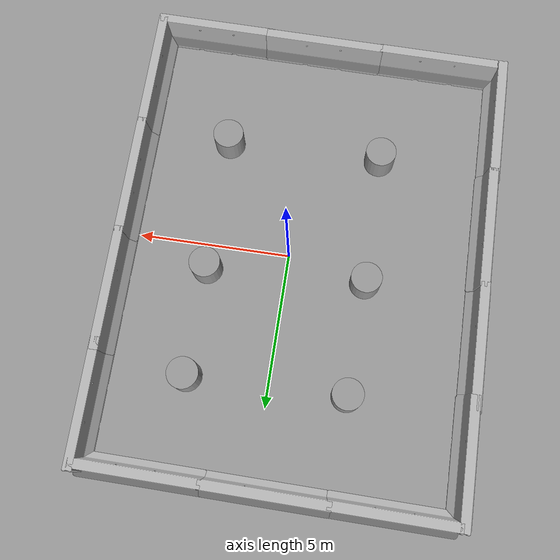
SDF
<sdf version="1.6">
 <world name="default">
  <light name="sun" type="directional">
   <cast_shadows>0</cast_shadows>
   <pose>0 0 10 0 -0 0</pose>
   <diffuse>0.8 0.8 0.8 1</diffuse>
   <specular>0.2 0.2 0.2 1</specular>
   <attenuation>
    <range>1000</range>
    <constant>0.9</constant>
    <linear>0.01</linear>
    <quadratic>0.001</quadratic>
   </attenuation>
   <direction>0.5 0.1 -0.9</direction>
  </light>
  <scene><ambient>0.4 0.4 0.4 1</ambient><background>0.7 0.7 0.7 1</background><shadows>0</shadows></scene>
  <physics name="default_physics" default="0" type="ode">
   <max_step_size>0.01</max_step_size>
   <real_time_factor>1</real_time_factor>
   <real_time_update_rate>100</real_time_update_rate>
  </physics>
  <model name="jersey_barrier">
   <static>1</static>
   <link name="link">
    <visual name="visual">
     <geometry><mesh><uri>model://jersey_barrier/meshes/jersey_barrier.dae</uri></mesh></geometry>
    </visual>
    <collision name="upright">
     <pose>0 0 0.5715 0 -0 0</pose>
     <geometry><box><size>4.06542 0.3063 1.143</size></box></geometry>
    </collision>
    <collision name="base">
     <pose>0 0 0.032258 0 -0 0</pose>
     <geometry><box><size>4.06542 0.8107 0.064516</size></box></geometry>
    </collision>
    <collision name="base2">
     <pose>0 0 0.1 0 -0 0</pose>
     <geometry><box><size>4.06542 0.65 0.1</size></box></geometry>
    </collision>
    <collision name="base3">
     <pose>0 0 0.2 0 -0 0</pose>
     <geometry><box><size>4.06542 0.5 0.1</size></box></geometry>
    </collision>
    <collision name="left-angle">
     <pose>0 -0.224 0.2401 0.9 -0 0</pose>
     <geometry><box><size>4.06542 0.5 0.064516</size></box></geometry>
    </collision>
    <collision name="right-angle">
     <pose>0 0.224 0.2401 -0.9 0 0</pose>
     <geometry><box><size>4.06542 0.5 0.064516</size></box></geometry>
    </collision>
    <velocity_decay><linear>0</linear><angular>0</angular></velocity_decay>
   </link>
   <pose>-4.06312 -7.45729 0 0 0 -0.009774</pose>
  </model>
  <model name="ground_plane_0">
   <static>1</static>
   <link name="link">
    <collision name="collision">
     <geometry><plane><normal>0 0 1</normal><size>100 100</size></plane></geometry>
     <surface><friction><ode><mu>100</mu><mu2>50</mu2></ode></friction></surface>
    </collision>
    <visual name="visual">
     <cast_shadows>0</cast_shadows>
     <geometry><plane><normal>0 0 1</normal><size>100 100</size></plane></geometry>
     <material>
      <script><uri>file://media/materials/scripts/gazebo.material</uri><name>Gazebo/Grey</name></script>
     </material>
    </visual>
    <velocity_decay><linear>0</linear><angular>0</angular></velocity_decay>
   </link>
   <pose>0.497681 0 0 0 -0 0</pose>
  </model>
  <gravity>0 0 -9.8</gravity>
  <magnetic_field>6e-06 2.3e-05 -4.2e-05</magnetic_field>
  <atmosphere type="adiabatic"/>
  <audio><device>default</device></audio>
  <spherical_coordinates>
   <surface_model>EARTH_WGS84</surface_model>
   <latitude_deg>0</latitude_deg>
   <longitude_deg>0</longitude_deg>
   <elevation>0</elevation>
   <heading_deg>0</heading_deg>
  </spherical_coordinates>
  <model name="jersey_barrier_clone">
   <static>1</static>
   <link name="link">
    <visual name="visual">
     <geometry><mesh><uri>model://jersey_barrier/meshes/jersey_barrier.dae</uri></mesh></geometry>
    </visual>
    <collision name="upright">
     <pose>0 0 0.5715 0 -0 0</pose>
     <geometry><box><size>4.06542 0.3063 1.143</size></box></geometry>
    </collision>
    <collision name="base">
     <pose>0 0 0.032258 0 -0 0</pose>
     <geometry><box><size>4.06542 0.8107 0.064516</size></box></geometry>
    </collision>
    <collision name="base2">
     <pose>0 0 0.1 0 -0 0</pose>
     <geometry><box><size>4.06542 0.65 0.1</size></box></geometry>
    </collision>
    <collision name="base3">
     <pose>0 0 0.2 0 -0 0</pose>
     <geometry><box><size>4.06542 0.5 0.1</size></box></geometry>
    </collision>
    <collision name="left-angle">
     <pose>0 -0.224 0.2401 0.9 -0 0</pose>
     <geometry><box><size>4.06542 0.5 0.064516</size></box></geometry>
    </collision>
    <collision name="right-angle">
     <pose>0 0.224 0.2401 -0.9 0 0</pose>
     <geometry><box><size>4.06542 0.5 0.064516</size></box></geometry>
    </collision>
    <velocity_decay><linear>0</linear><angular>0</angular></velocity_decay>
   </link>
   <pose>-0.119952 -7.47951 0 0 0 -0.009774</pose>
  </model>
  <model name="jersey_barrier_clone_clone">
   <static>1</static>
   <link name="link">
    <visual name="visual">
     <geometry><mesh><uri>model://jersey_barrier/meshes/jersey_barrier.dae</uri></mesh></geometry>
    </visual>
    <collision name="upright">
     <pose>0 0 0.5715 0 -0 0</pose>
     <geometry><box><size>4.06542 0.3063 1.143</size></box></geometry>
    </collision>
    <collision name="base">
     <pose>0 0 0.032258 0 -0 0</pose>
     <geometry><box><size>4.06542 0.8107 0.064516</size></box></geometry>
    </collision>
    <collision name="base2">
     <pose>0 0 0.1 0 -0 0</pose>
     <geometry><box><size>4.06542 0.65 0.1</size></box></geometry>
    </collision>
    <collision name="base3">
     <pose>0 0 0.2 0 -0 0</pose>
     <geometry><box><size>4.06542 0.5 0.1</size></box></geometry>
    </collision>
    <collision name="left-angle">
     <pose>0 -0.224 0.2401 0.9 -0 0</pose>
     <geometry><box><size>4.06542 0.5 0.064516</size></box></geometry>
    </collision>
    <collision name="right-angle">
     <pose>0 0.224 0.2401 -0.9 0 0</pose>
     <geometry><box><size>4.06542 0.5 0.064516</size></box></geometry>
    </collision>
    <velocity_decay><linear>0</linear><angular>0</angular></velocity_decay>
   </link>
   <pose>3.63853 -7.52755 0 0 0 -0.009774</pose>
  </model>
  <model name="jersey_barrier_clone_clone_clone">
   <static>1</static>
   <link name="link">
    <visual name="visual">
     <geometry><mesh><uri>model://jersey_barrier/meshes/jersey_barrier.dae</uri></mesh></geometry>
    </visual>
    <collision name="upright">
     <pose>0 0 0.5715 0 -0 0</pose>
     <geometry><box><size>4.06542 0.3063 1.143</size></box></geometry>
    </collision>
    <collision name="base">
     <pose>0 0 0.032258 0 -0 0</pose>
     <geometry><box><size>4.06542 0.8107 0.064516</size></box></geometry>
    </collision>
    <collision name="base2">
     <pose>0 0 0.1 0 -0 0</pose>
     <geometry><box><size>4.06542 0.65 0.1</size></box></geometry>
    </collision>
    <collision name="base3">
     <pose>0 0 0.2 0 -0 0</pose>
     <geometry><box><size>4.06542 0.5 0.1</size></box></geometry>
    </collision>
    <collision name="left-angle">
     <pose>0 -0.224 0.2401 0.9 -0 0</pose>
     <geometry><box><size>4.06542 0.5 0.064516</size></box></geometry>
    </collision>
    <collision name="right-angle">
     <pose>0 0.224 0.2401 -0.9 0 0</pose>
     <geometry><box><size>4.06542 0.5 0.064516</size></box></geometry>
    </collision>
    <velocity_decay><linear>0</linear><angular>0</angular></velocity_decay>
   </link>
   <pose>3.46357 7.48747 0 0 0 -0.009774</pose>
  </model>
  <model name="jersey_barrier_clone_clone_clone_clone">
   <static>1</static>
   <link name="link">
    <visual name="visual">
     <geometry><mesh><uri>model://jersey_barrier/meshes/jersey_barrier.dae</uri></mesh></geometry>
    </visual>
    <collision name="upright">
     <pose>0 0 0.5715 0 -0 0</pose>
     <geometry><box><size>4.06542 0.3063 1.143</size></box></geometry>
    </collision>
    <collision name="base">
     <pose>0 0 0.032258 0 -0 0</pose>
     <geometry><box><size>4.06542 0.8107 0.064516</size></box></geometry>
    </collision>
    <collision name="base2">
     <pose>0 0 0.1 0 -0 0</pose>
     <geometry><box><size>4.06542 0.65 0.1</size></box></geometry>
    </collision>
    <collision name="base3">
     <pose>0 0 0.2 0 -0 0</pose>
     <geometry><box><size>4.06542 0.5 0.1</size></box></geometry>
    </collision>
    <collision name="left-angle">
     <pose>0 -0.224 0.2401 0.9 -0 0</pose>
     <geometry><box><size>4.06542 0.5 0.064516</size></box></geometry>
    </collision>
    <collision name="right-angle">
     <pose>0 0.224 0.2401 -0.9 0 0</pose>
     <geometry><box><size>4.06542 0.5 0.064516</size></box></geometry>
    </collision>
    <velocity_decay><linear>0</linear><angular>0</angular></velocity_decay>
   </link>
   <pose>-0.431388 7.52892 0 0 0 -0.009774</pose>
  </model>
  <model name="jersey_barrier_clone_clone_clone_clone_clone">
   <static>1</static>
   <link name="link">
    <visual name="visual">
     <geometry><mesh><uri>model://jersey_barrier/meshes/jersey_barrier.dae</uri></mesh></geometry>
    </visual>
    <collision name="upright">
     <pose>0 0 0.5715 0 -0 0</pose>
     <geometry><box><size>4.06542 0.3063 1.143</size></box></geometry>
    </collision>
    <collision name="base">
     <pose>0 0 0.032258 0 -0 0</pose>
     <geometry><box><size>4.06542 0.8107 0.064516</size></box></geometry>
    </collision>
    <collision name="base2">
     <pose>0 0 0.1 0 -0 0</pose>
     <geometry><box><size>4.06542 0.65 0.1</size></box></geometry>
    </collision>
    <collision name="base3">
     <pose>0 0 0.2 0 -0 0</pose>
     <geometry><box><size>4.06542 0.5 0.1</size></box></geometry>
    </collision>
    <collision name="left-angle">
     <pose>0 -0.224 0.2401 0.9 -0 0</pose>
     <geometry><box><size>4.06542 0.5 0.064516</size></box></geometry>
    </collision>
    <collision name="right-angle">
     <pose>0 0.224 0.2401 -0.9 0 0</pose>
     <geometry><box><size>4.06542 0.5 0.064516</size></box></geometry>
    </collision>
    <velocity_decay><linear>0</linear><angular>0</angular></velocity_decay>
   </link>
   <pose>-4.29011 7.55811 0 0 0 -0.009774</pose>
  </model>
  <model name="jersey_barrier_clone_0">
   <static>1</static>
   <link name="link">
    <visual name="visual">
     <geometry><mesh><uri>model://jersey_barrier/meshes/jersey_barrier.dae</uri></mesh></geometry>
    </visual>
    <collision name="upright">
     <pose>0 0 0.5715 0 -0 0</pose>
     <geometry><box><size>4.06542 0.3063 1.143</size></box></geometry>
    </collision>
    <collision name="base">
     <pose>0 0 0.032258 0 -0 0</pose>
     <geometry><box><size>4.06542 0.8107 0.064516</size></box></geometry>
    </collision>
    <collision name="base2">
     <pose>0 0 0.1 0 -0 0</pose>
     <geometry><box><size>4.06542 0.65 0.1</size></box></geometry>
    </collision>
    <collision name="base3">
     <pose>0 0 0.2 0 -0 0</pose>
     <geometry><box><size>4.06542 0.5 0.1</size></box></geometry>
    </collision>
    <collision name="left-angle">
     <pose>0 -0.224 0.2401 0.9 -0 0</pose>
     <geometry><box><size>4.06542 0.5 0.064516</size></box></geometry>
    </collision>
    <collision name="right-angle">
     <pose>0 0.224 0.2401 -0.9 0 0</pose>
     <geometry><box><size>4.06542 0.5 0.064516</size></box></geometry>
    </collision>
    <velocity_decay><linear>0</linear><angular>0</angular></velocity_decay>
   </link>
   <pose>-6.27583 -5.5751 0 0 -0 1.57819</pose>
  </model>
  <model name="jersey_barrier_clone_0_clone">
   <static>1</static>
   <link name="link">
    <visual name="visual">
     <geometry><mesh><uri>model://jersey_barrier/meshes/jersey_barrier.dae</uri></mesh></geometry>
    </visual>
    <collision name="upright">
     <pose>0 0 0.5715 0 -0 0</pose>
     <geometry><box><size>4.06542 0.3063 1.143</size></box></geometry>
    </collision>
    <collision name="base">
     <pose>0 0 0.032258 0 -0 0</pose>
     <geometry><box><size>4.06542 0.8107 0.064516</size></box></geometry>
    </collision>
    <collision name="base2">
     <pose>0 0 0.1 0 -0 0</pose>
     <geometry><box><size>4.06542 0.65 0.1</size></box></geometry>
    </collision>
    <collision name="base3">
     <pose>0 0 0.2 0 -0 0</pose>
     <geometry><box><size>4.06542 0.5 0.1</size></box></geometry>
    </collision>
    <collision name="left-angle">
     <pose>0 -0.224 0.2401 0.9 -0 0</pose>
     <geometry><box><size>4.06542 0.5 0.064516</size></box></geometry>
    </collision>
    <collision name="right-angle">
     <pose>0 0.224 0.2401 -0.9 0 0</pose>
     <geometry><box><size>4.06542 0.5 0.064516</size></box></geometry>
    </collision>
    <velocity_decay><linear>0</linear><angular>0</angular></velocity_decay>
   </link>
   <pose>-6.27939 -1.65531 0 0 -0 1.57819</pose>
  </model>
  <model name="jersey_barrier_clone_0_clone_clone">
   <static>1</static>
   <link name="link">
    <visual name="visual">
     <geometry><mesh><uri>model://jersey_barrier/meshes/jersey_barrier.dae</uri></mesh></geometry>
    </visual>
    <collision name="upright">
     <pose>0 0 0.5715 0 -0 0</pose>
     <geometry><box><size>4.06542 0.3063 1.143</size></box></geometry>
    </collision>
    <collision name="base">
     <pose>0 0 0.032258 0 -0 0</pose>
     <geometry><box><size>4.06542 0.8107 0.064516</size></box></geometry>
    </collision>
    <collision name="base2">
     <pose>0 0 0.1 0 -0 0</pose>
     <geometry><box><size>4.06542 0.65 0.1</size></box></geometry>
    </collision>
    <collision name="base3">
     <pose>0 0 0.2 0 -0 0</pose>
     <geometry><box><size>4.06542 0.5 0.1</size></box></geometry>
    </collision>
    <collision name="left-angle">
     <pose>0 -0.224 0.2401 0.9 -0 0</pose>
     <geometry><box><size>4.06542 0.5 0.064516</size></box></geometry>
    </collision>
    <collision name="right-angle">
     <pose>0 0.224 0.2401 -0.9 0 0</pose>
     <geometry><box><size>4.06542 0.5 0.064516</size></box></geometry>
    </collision>
    <velocity_decay><linear>0</linear><angular>0</angular></velocity_decay>
   </link>
   <pose>-6.32341 2.19754 0 0 -0 1.57819</pose>
  </model>
  <model name="jersey_barrier_clone_0_clone_clone_0">
   <static>1</static>
   <link name="link">
    <visual name="visual">
     <geometry><mesh><uri>model://jersey_barrier/meshes/jersey_barrier.dae</uri></mesh></geometry>
    </visual>
    <collision name="upright">
     <pose>0 0 0.5715 0 -0 0</pose>
     <geometry><box><size>4.06542 0.3063 1.143</size></box></geometry>
    </collision>
    <collision name="base">
     <pose>0 0 0.032258 0 -0 0</pose>
     <geometry><box><size>4.06542 0.8107 0.064516</size></box></geometry>
    </collision>
    <collision name="base2">
     <pose>0 0 0.1 0 -0 0</pose>
     <geometry><box><size>4.06542 0.65 0.1</size></box></geometry>
    </collision>
    <collision name="base3">
     <pose>0 0 0.2 0 -0 0</pose>
     <geometry><box><size>4.06542 0.5 0.1</size></box></geometry>
    </collision>
    <collision name="left-angle">
     <pose>0 -0.224 0.2401 0.9 -0 0</pose>
     <geometry><box><size>4.06542 0.5 0.064516</size></box></geometry>
    </collision>
    <collision name="right-angle">
     <pose>0 0.224 0.2401 -0.9 0 0</pose>
     <geometry><box><size>4.06542 0.5 0.064516</size></box></geometry>
    </collision>
    <velocity_decay><linear>0</linear><angular>0</angular></velocity_decay>
   </link>
   <pose>-6.32065 5.72179 0 0 -0 1.57819</pose>
  </model>
  <model name="jersey_barrier_clone_0_clone_clone_1">
   <static>1</static>
   <link name="link">
    <visual name="visual">
     <geometry><mesh><uri>model://jersey_barrier/meshes/jersey_barrier.dae</uri></mesh></geometry>
    </visual>
    <collision name="upright">
     <pose>0 0 0.5715 0 -0 0</pose>
     <geometry><box><size>4.06542 0.3063 1.143</size></box></geometry>
    </collision>
    <collision name="base">
     <pose>0 0 0.032258 0 -0 0</pose>
     <geometry><box><size>4.06542 0.8107 0.064516</size></box></geometry>
    </collision>
    <collision name="base2">
     <pose>0 0 0.1 0 -0 0</pose>
     <geometry><box><size>4.06542 0.65 0.1</size></box></geometry>
    </collision>
    <collision name="base3">
     <pose>0 0 0.2 0 -0 0</pose>
     <geometry><box><size>4.06542 0.5 0.1</size></box></geometry>
    </collision>
    <collision name="left-angle">
     <pose>0 -0.224 0.2401 0.9 -0 0</pose>
     <geometry><box><size>4.06542 0.5 0.064516</size></box></geometry>
    </collision>
    <collision name="right-angle">
     <pose>0 0.224 0.2401 -0.9 0 0</pose>
     <geometry><box><size>4.06542 0.5 0.064516</size></box></geometry>
    </collision>
    <velocity_decay><linear>0</linear><angular>0</angular></velocity_decay>
   </link>
   <pose>5.50578 -5.60947 0 0 -0 1.57819</pose>
  </model>
  <model name="jersey_barrier_clone_0_clone_clone_2">
   <static>1</static>
   <link name="link">
    <visual name="visual">
     <geometry><mesh><uri>model://jersey_barrier/meshes/jersey_barrier.dae</uri></mesh></geometry>
    </visual>
    <collision name="upright">
     <pose>0 0 0.5715 0 -0 0</pose>
     <geometry><box><size>4.06542 0.3063 1.143</size></box></geometry>
    </collision>
    <collision name="base">
     <pose>0 0 0.032258 0 -0 0</pose>
     <geometry><box><size>4.06542 0.8107 0.064516</size></box></geometry>
    </collision>
    <collision name="base2">
     <pose>0 0 0.1 0 -0 0</pose>
     <geometry><box><size>4.06542 0.65 0.1</size></box></geometry>
    </collision>
    <collision name="base3">
     <pose>0 0 0.2 0 -0 0</pose>
     <geometry><box><size>4.06542 0.5 0.1</size></box></geometry>
    </collision>
    <collision name="left-angle">
     <pose>0 -0.224 0.2401 0.9 -0 0</pose>
     <geometry><box><size>4.06542 0.5 0.064516</size></box></geometry>
    </collision>
    <collision name="right-angle">
     <pose>0 0.224 0.2401 -0.9 0 0</pose>
     <geometry><box><size>4.06542 0.5 0.064516</size></box></geometry>
    </collision>
    <velocity_decay><linear>0</linear><angular>0</angular></velocity_decay>
   </link>
   <pose>5.48039 -1.73546 0 0 -0 1.57819</pose>
  </model>
  <model name="jersey_barrier_clone_0_clone_clone_3">
   <static>1</static>
   <link name="link">
    <visual name="visual">
     <geometry><mesh><uri>model://jersey_barrier/meshes/jersey_barrier.dae</uri></mesh></geometry>
    </visual>
    <collision name="upright">
     <pose>0 0 0.5715 0 -0 0</pose>
     <geometry><box><size>4.06542 0.3063 1.143</size></box></geometry>
    </collision>
    <collision name="base">
     <pose>0 0 0.032258 0 -0 0</pose>
     <geometry><box><size>4.06542 0.8107 0.064516</size></box></geometry>
    </collision>
    <collision name="base2">
     <pose>0 0 0.1 0 -0 0</pose>
     <geometry><box><size>4.06542 0.65 0.1</size></box></geometry>
    </collision>
    <collision name="base3">
     <pose>0 0 0.2 0 -0 0</pose>
     <geometry><box><size>4.06542 0.5 0.1</size></box></geometry>
    </collision>
    <collision name="left-angle">
     <pose>0 -0.224 0.2401 0.9 -0 0</pose>
     <geometry><box><size>4.06542 0.5 0.064516</size></box></geometry>
    </collision>
    <collision name="right-angle">
     <pose>0 0.224 0.2401 -0.9 0 0</pose>
     <geometry><box><size>4.06542 0.5 0.064516</size></box></geometry>
    </collision>
    <velocity_decay><linear>0</linear><angular>0</angular></velocity_decay>
   </link>
   <pose>5.45536 2.08315 0 0 -0 1.57819</pose>
  </model>
  <model name="jersey_barrier_clone_0_clone_clone_4">
   <static>1</static>
   <link name="link">
    <visual name="visual">
     <geometry><mesh><uri>model://jersey_barrier/meshes/jersey_barrier.dae</uri></mesh></geometry>
    </visual>
    <collision name="upright">
     <pose>0 0 0.5715 0 -0 0</pose>
     <geometry><box><size>4.06542 0.3063 1.143</size></box></geometry>
    </collision>
    <collision name="base">
     <pose>0 0 0.032258 0 -0 0</pose>
     <geometry><box><size>4.06542 0.8107 0.064516</size></box></geometry>
    </collision>
    <collision name="base2">
     <pose>0 0 0.1 0 -0 0</pose>
     <geometry><box><size>4.06542 0.65 0.1</size></box></geometry>
    </collision>
    <collision name="base3">
     <pose>0 0 0.2 0 -0 0</pose>
     <geometry><box><size>4.06542 0.5 0.1</size></box></geometry>
    </collision>
    <collision name="left-angle">
     <pose>0 -0.224 0.2401 0.9 -0 0</pose>
     <geometry><box><size>4.06542 0.5 0.064516</size></box></geometry>
    </collision>
    <collision name="right-angle">
     <pose>0 0.224 0.2401 -0.9 0 0</pose>
     <geometry><box><size>4.06542 0.5 0.064516</size></box></geometry>
    </collision>
    <velocity_decay><linear>0</linear><angular>0</angular></velocity_decay>
   </link>
   <pose>5.43179 5.68044 0 0 -0 1.57819</pose>
  </model>
  <model name="unit_cylinder">
   <pose>2.57988 -3.65252 0.499824 -0.000249 -0.000249 -2.9e-05</pose>
   <link name="link">
    <inertial>
     <mass>1</mass>
     <inertia><ixx>0.145833</ixx><ixy>0</ixy><ixz>0</ixz><iyy>0.145833</iyy><iyz>0</iyz><izz>0.125</izz></inertia>
    </inertial>
    <collision name="collision">
     <geometry><cylinder><radius>0.5</radius><length>1</length></cylinder></geometry>
    </collision>
    <visual name="visual">
     <geometry><cylinder><radius>0.5</radius><length>1</length></cylinder></geometry>
     <material>
      <script><name>Gazebo/Grey</name><uri>file://media/materials/scripts/gazebo.material</uri></script>
     </material>
    </visual>
   </link>
  </model>
  <model name="unit_cylinder_clone">
   <pose>-2.54193 -3.74836 0.499824 -0.000249 -0.000249 -2.9e-05</pose>
   <link name="link">
    <inertial>
     <mass>1</mass>
     <inertia><ixx>0.145833</ixx><ixy>0</ixy><ixz>0</ixz><iyy>0.145833</iyy><iyz>0</iyz><izz>0.125</izz></inertia>
    </inertial>
    <collision name="collision">
     <geometry><cylinder><radius>0.5</radius><length>1</length></cylinder></geometry>
    </collision>
    <visual name="visual">
     <geometry><cylinder><radius>0.5</radius><length>1</length></cylinder></geometry>
     <material>
      <script><name>Gazebo/Grey</name><uri>file://media/materials/scripts/gazebo.material</uri></script>
     </material>
    </visual>
   </link>
  </model>
  <model name="unit_cylinder_clone_0">
   <pose>-2.59499 0.564069 0.499096 4.8e-05 4.8e-05 -2.9e-05</pose>
   <link name="link">
    <inertial>
     <mass>1</mass>
     <inertia><ixx>0.145833</ixx><ixy>0</ixy><ixz>0</ixz><iyy>0.145833</iyy><iyz>0</iyz><izz>0.125</izz></inertia>
    </inertial>
    <collision name="collision">
     <geometry><cylinder><radius>0.5</radius><length>1</length></cylinder></geometry>
    </collision>
    <visual name="visual">
     <geometry><cylinder><radius>0.5</radius><length>1</length></cylinder></geometry>
     <material>
      <script><name>Gazebo/Grey</name><uri>file://media/materials/scripts/gazebo.material</uri></script>
     </material>
    </visual>
   </link>
  </model>
  <model name="unit_cylinder_clone_1">
   <pose>-2.49061 4.26518 0.499789 0.000422 0.000422 -2.8e-05</pose>
   <link name="link">
    <inertial>
     <mass>1</mass>
     <inertia><ixx>0.145833</ixx><ixy>0</ixy><ixz>0</ixz><iyy>0.145833</iyy><iyz>0</iyz><izz>0.125</izz></inertia>
    </inertial>
    <collision name="collision">
     <geometry><cylinder><radius>0.5</radius><length>1</length></cylinder></geometry>
    </collision>
    <visual name="visual">
     <geometry><cylinder><radius>0.5</radius><length>1</length></cylinder></geometry>
     <material>
      <script><name>Gazebo/Grey</name><uri>file://media/materials/scripts/gazebo.material</uri></script>
     </material>
    </visual>
   </link>
  </model>
  <model name="unit_cylinder_clone_0_clone">
   <pose>2.57769 0.814049 0.499789 0.000422 0.000422 -2.8e-05</pose>
   <link name="link">
    <inertial>
     <mass>1</mass>
     <inertia><ixx>0.145833</ixx><ixy>0</ixy><ixz>0</ixz><iyy>0.145833</iyy><iyz>0</iyz><izz>0.125</izz></inertia>
    </inertial>
    <collision name="collision">
     <geometry><cylinder><radius>0.5</radius><length>1</length></cylinder></geometry>
    </collision>
    <visual name="visual">
     <geometry><cylinder><radius>0.5</radius><length>1</length></cylinder></geometry>
     <material>
      <script><name>Gazebo/Grey</name><uri>file://media/materials/scripts/gazebo.material</uri></script>
     </material>
    </visual>
   </link>
  </model>
  <model name="unit_cylinder_clone_1_clone">
   <pose>2.61662 4.36708 0.499096 4.8e-05 4.8e-05 -3e-05</pose>
   <link name="link">
    <inertial>
     <mass>1</mass>
     <inertia><ixx>0.145833</ixx><ixy>0</ixy><ixz>0</ixz><iyy>0.145833</iyy><iyz>0</iyz><izz>0.125</izz></inertia>
    </inertial>
    <collision name="collision">
     <geometry><cylinder><radius>0.5</radius><length>1</length></cylinder></geometry>
    </collision>
    <visual name="visual">
     <geometry><cylinder><radius>0.5</radius><length>1</length></cylinder></geometry>
     <material>
      <script><name>Gazebo/Grey</name><uri>file://media/materials/scripts/gazebo.material</uri></script>
     </material>
    </visual>
   </link>
  </model>
 </world>
</sdf>
